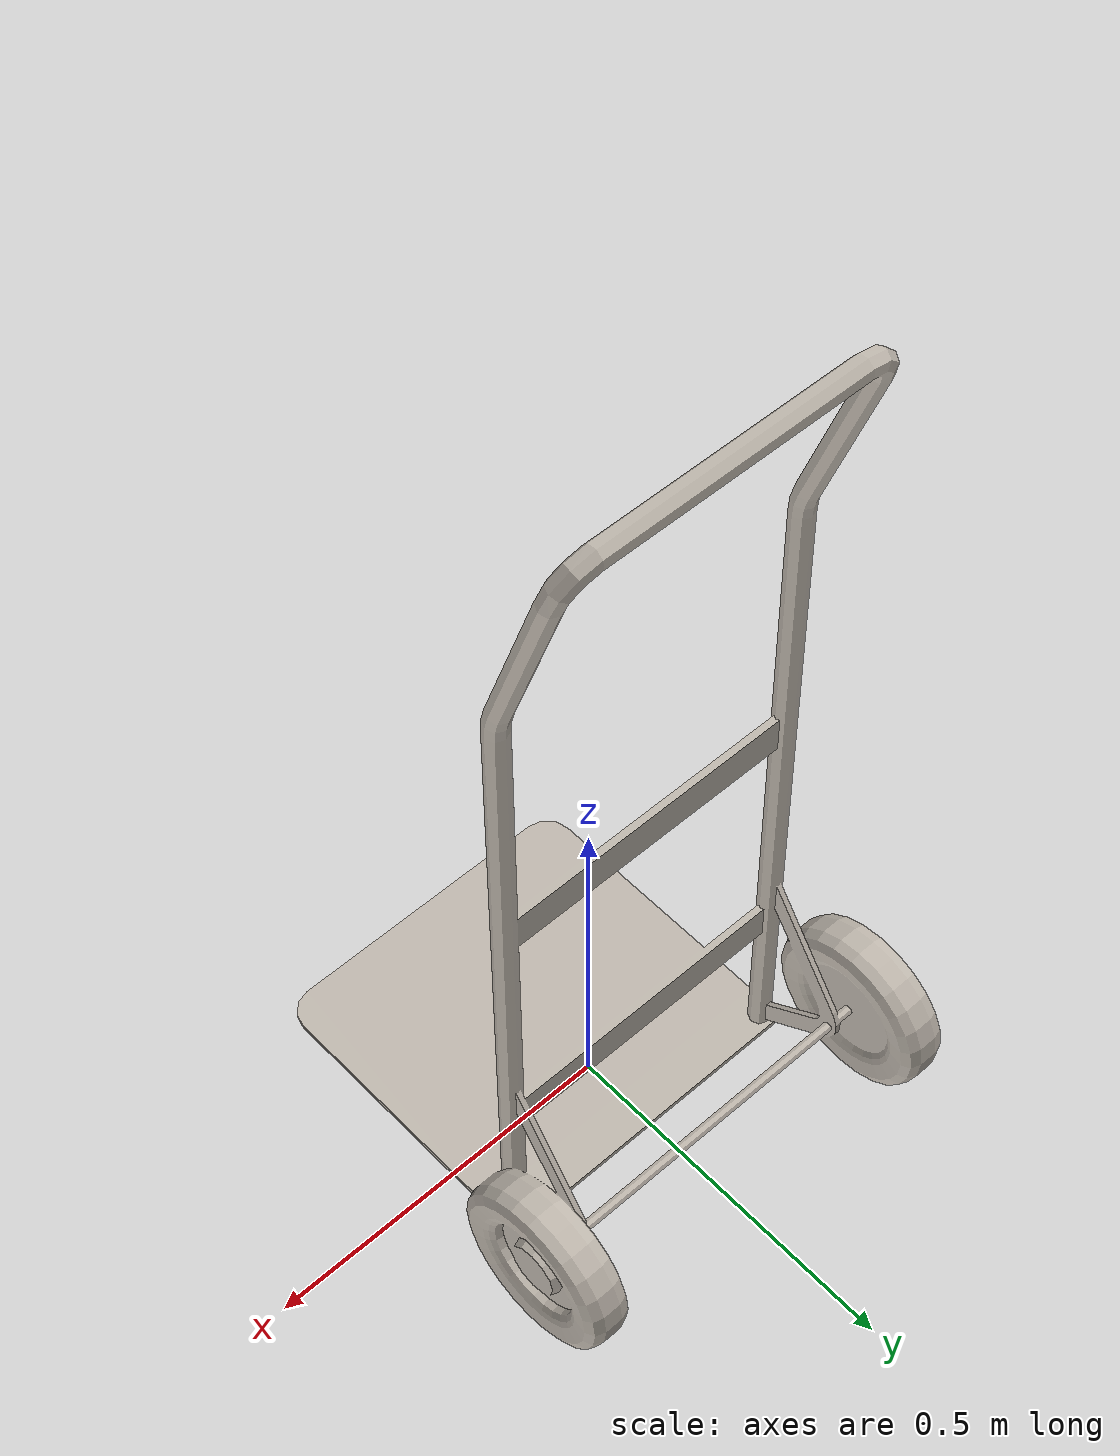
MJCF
<mujoco model="material_cart_red">
  <compiler angle="radian" autolimits="true"/>
  <option gravity="0 0 -9.81"/>
  <default>
    <default class="wheel">
      <joint type="hinge" axis="1 0 0" damping="0.05" frictionloss="0.02" armature="0.01"/>
      <geom type="cylinder" size="0.12 0.035" quat="0.707107 0 0.707107 0" density="300" group="3" rgba="0 0 0 0" condim="3" friction="1.2 0.005 0.001" solref="0.02 1" solimp="0.9 0.95 0.001"/>
    </default>
  </default>
  <asset>
    <texture name="texture_0" type="2d" file="assets/red/textures/texture_0.png"/>
    <material name="material_0_hand_truck" rgba="1 1 1 1" metallic="0" roughness="0.718602" texture="texture_0"/>
    <mesh name="visual_0" file="assets/red/meshes/visual_0.obj" inertia="shell"/>
  </asset>
  <worldbody>
    <body name="material_cart_red">
      <joint name="material_cart_red_free" type="free" damping="0.05"/>
      <geom name="visual_0" type="mesh" mesh="visual_0" material="material_0_hand_truck" group="0" contype="0" conaffinity="0" density="0"/>
      <geom name="frame" type="box" pos="0 0.08 0.76" size="0.2 0.14 0.52" group="3" rgba="0 0 0 0" density="80"/>
      <geom name="toe" type="box" pos="0 -0.31 0.008" size="0.14 0.025 0.008" group="3" rgba="0 0 0 0" density="200" friction="0.6 0.005 0.001"/>
      <body name="wheel_l" pos="-0.243 0.155 0.12">
        <joint name="wheel_l" class="wheel"/>
        <geom name="wheel_l" class="wheel"/>
      </body>
      <body name="wheel_r" pos="0.243 0.155 0.12">
        <joint name="wheel_r" class="wheel"/>
        <geom name="wheel_r" class="wheel"/>
      </body>
    </body>
  </worldbody>
  <contact>
    <exclude body1="material_cart_red" body2="wheel_l"/>
    <exclude body1="material_cart_red" body2="wheel_r"/>
  </contact>
</mujoco>
